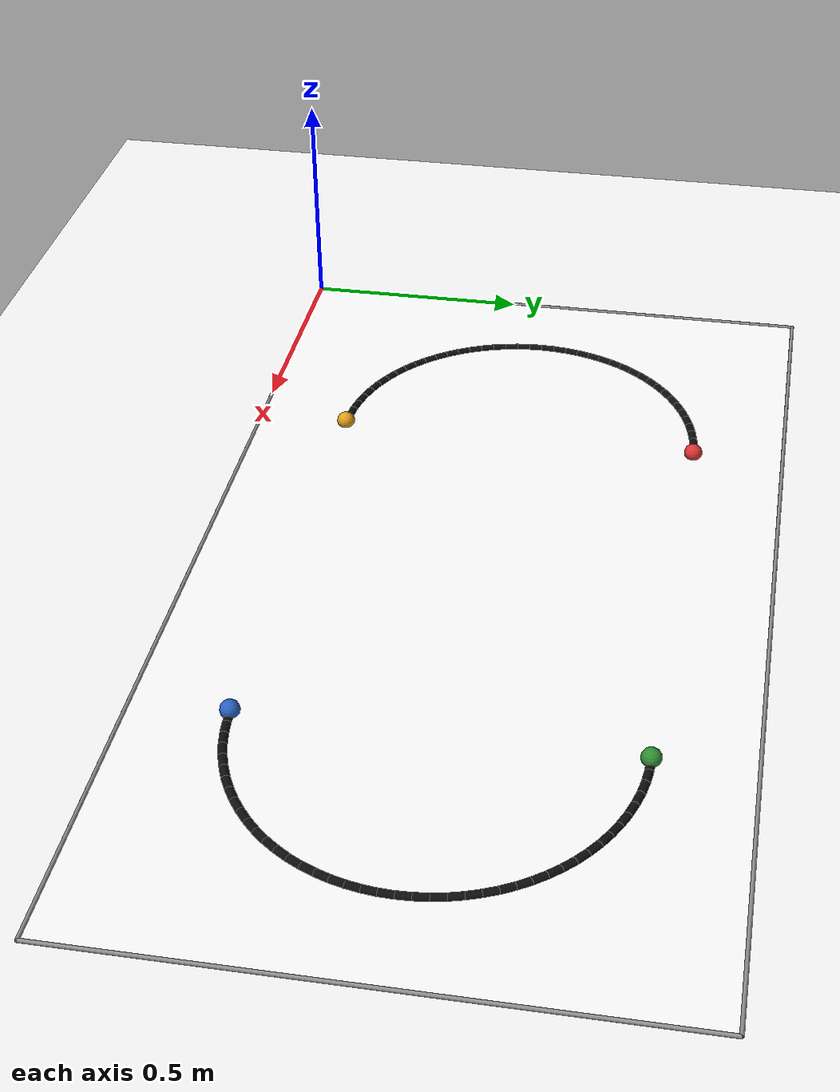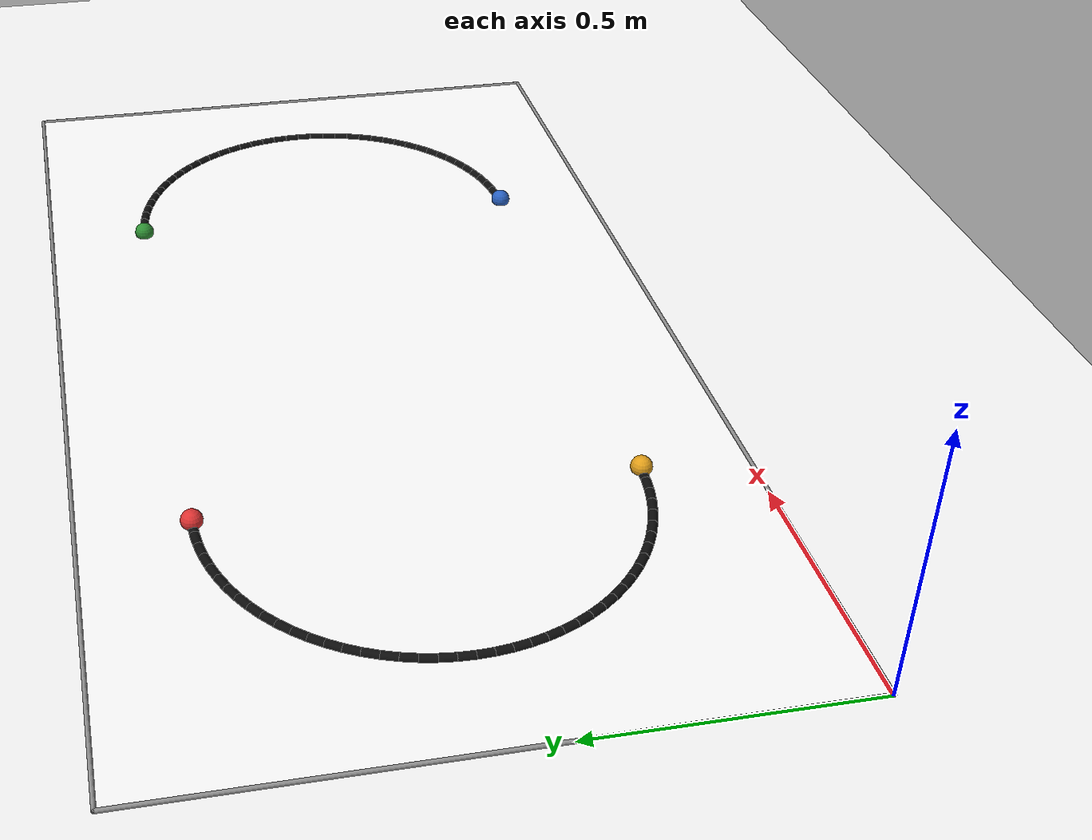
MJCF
<mujoco>
  <worldbody>
    <geom name="ground" type="plane" pos="1.100 0.600 0" size="3 3 0.1" rgba="0.980 0.980 0.980 1.000"/>
        <geom name="field" type="box" pos="1.100 0.600 0.001" size="1.100 0.600 0.001" rgba="1.000 1.000 1.000 1.000" contype="0" conaffinity="0"/>
        <geom name="boundary_top" type="capsule" fromto="0.000 0.000 0.002 2.200 0.000 0.002" size="0.004" rgba="0.550 0.550 0.550 1.000" contype="0" conaffinity="0"/>
        <geom name="boundary_bottom" type="capsule" fromto="0.000 1.200 0.002 2.200 1.200 0.002" size="0.004" rgba="0.550 0.550 0.550 1.000" contype="0" conaffinity="0"/>
        <geom name="boundary_left" type="capsule" fromto="0.000 0.000 0.002 0.000 1.200 0.002" size="0.004" rgba="0.550 0.550 0.550 1.000" contype="0" conaffinity="0"/>
        <geom name="boundary_right" type="capsule" fromto="2.200 0.000 0.002 2.200 1.200 0.002" size="0.004" rgba="0.550 0.550 0.550 1.000" contype="0" conaffinity="0"/>
        <geom name="left_arc_0" type="capsule" fromto="0.6000 1.0000 0.0010 0.5701 0.9989 0.0010" size="0.0090" rgba="0.050 0.050 0.050 1.000" contype="0" conaffinity="0"/>
    <geom name="left_arc_1" type="capsule" fromto="0.5701 0.9989 0.0010 0.5404 0.9955 0.0010" size="0.0090" rgba="0.050 0.050 0.050 1.000" contype="0" conaffinity="0"/>
    <geom name="left_arc_2" type="capsule" fromto="0.5404 0.9955 0.0010 0.5110 0.9900 0.0010" size="0.0090" rgba="0.050 0.050 0.050 1.000" contype="0" conaffinity="0"/>
    <geom name="left_arc_3" type="capsule" fromto="0.5110 0.9900 0.0010 0.4821 0.9822 0.0010" size="0.0090" rgba="0.050 0.050 0.050 1.000" contype="0" conaffinity="0"/>
    <geom name="left_arc_4" type="capsule" fromto="0.4821 0.9822 0.0010 0.4539 0.9723 0.0010" size="0.0090" rgba="0.050 0.050 0.050 1.000" contype="0" conaffinity="0"/>
    <geom name="left_arc_5" type="capsule" fromto="0.4539 0.9723 0.0010 0.4264 0.9604 0.0010" size="0.0090" rgba="0.050 0.050 0.050 1.000" contype="0" conaffinity="0"/>
    <geom name="left_arc_6" type="capsule" fromto="0.4264 0.9604 0.0010 0.4000 0.9464 0.0010" size="0.0090" rgba="0.050 0.050 0.050 1.000" contype="0" conaffinity="0"/>
    <geom name="left_arc_7" type="capsule" fromto="0.4000 0.9464 0.0010 0.3747 0.9305 0.0010" size="0.0090" rgba="0.050 0.050 0.050 1.000" contype="0" conaffinity="0"/>
    <geom name="left_arc_8" type="capsule" fromto="0.3747 0.9305 0.0010 0.3506 0.9127 0.0010" size="0.0090" rgba="0.050 0.050 0.050 1.000" contype="0" conaffinity="0"/>
    <geom name="left_arc_9" type="capsule" fromto="0.3506 0.9127 0.0010 0.3279 0.8932 0.0010" size="0.0090" rgba="0.050 0.050 0.050 1.000" contype="0" conaffinity="0"/>
    <geom name="left_arc_10" type="capsule" fromto="0.3279 0.8932 0.0010 0.3068 0.8721 0.0010" size="0.0090" rgba="0.050 0.050 0.050 1.000" contype="0" conaffinity="0"/>
    <geom name="left_arc_11" type="capsule" fromto="0.3068 0.8721 0.0010 0.2873 0.8494 0.0010" size="0.0090" rgba="0.050 0.050 0.050 1.000" contype="0" conaffinity="0"/>
    <geom name="left_arc_12" type="capsule" fromto="0.2873 0.8494 0.0010 0.2695 0.8253 0.0010" size="0.0090" rgba="0.050 0.050 0.050 1.000" contype="0" conaffinity="0"/>
    <geom name="left_arc_13" type="capsule" fromto="0.2695 0.8253 0.0010 0.2536 0.8000 0.0010" size="0.0090" rgba="0.050 0.050 0.050 1.000" contype="0" conaffinity="0"/>
    <geom name="left_arc_14" type="capsule" fromto="0.2536 0.8000 0.0010 0.2396 0.7736 0.0010" size="0.0090" rgba="0.050 0.050 0.050 1.000" contype="0" conaffinity="0"/>
    <geom name="left_arc_15" type="capsule" fromto="0.2396 0.7736 0.0010 0.2277 0.7461 0.0010" size="0.0090" rgba="0.050 0.050 0.050 1.000" contype="0" conaffinity="0"/>
    <geom name="left_arc_16" type="capsule" fromto="0.2277 0.7461 0.0010 0.2178 0.7179 0.0010" size="0.0090" rgba="0.050 0.050 0.050 1.000" contype="0" conaffinity="0"/>
    <geom name="left_arc_17" type="capsule" fromto="0.2178 0.7179 0.0010 0.2100 0.6890 0.0010" size="0.0090" rgba="0.050 0.050 0.050 1.000" contype="0" conaffinity="0"/>
    <geom name="left_arc_18" type="capsule" fromto="0.2100 0.6890 0.0010 0.2045 0.6596 0.0010" size="0.0090" rgba="0.050 0.050 0.050 1.000" contype="0" conaffinity="0"/>
    <geom name="left_arc_19" type="capsule" fromto="0.2045 0.6596 0.0010 0.2011 0.6299 0.0010" size="0.0090" rgba="0.050 0.050 0.050 1.000" contype="0" conaffinity="0"/>
    <geom name="left_arc_20" type="capsule" fromto="0.2011 0.6299 0.0010 0.2000 0.6000 0.0010" size="0.0090" rgba="0.050 0.050 0.050 1.000" contype="0" conaffinity="0"/>
    <geom name="left_arc_21" type="capsule" fromto="0.2000 0.6000 0.0010 0.2011 0.5701 0.0010" size="0.0090" rgba="0.050 0.050 0.050 1.000" contype="0" conaffinity="0"/>
    <geom name="left_arc_22" type="capsule" fromto="0.2011 0.5701 0.0010 0.2045 0.5404 0.0010" size="0.0090" rgba="0.050 0.050 0.050 1.000" contype="0" conaffinity="0"/>
    <geom name="left_arc_23" type="capsule" fromto="0.2045 0.5404 0.0010 0.2100 0.5110 0.0010" size="0.0090" rgba="0.050 0.050 0.050 1.000" contype="0" conaffinity="0"/>
    <geom name="left_arc_24" type="capsule" fromto="0.2100 0.5110 0.0010 0.2178 0.4821 0.0010" size="0.0090" rgba="0.050 0.050 0.050 1.000" contype="0" conaffinity="0"/>
    <geom name="left_arc_25" type="capsule" fromto="0.2178 0.4821 0.0010 0.2277 0.4539 0.0010" size="0.0090" rgba="0.050 0.050 0.050 1.000" contype="0" conaffinity="0"/>
    <geom name="left_arc_26" type="capsule" fromto="0.2277 0.4539 0.0010 0.2396 0.4264 0.0010" size="0.0090" rgba="0.050 0.050 0.050 1.000" contype="0" conaffinity="0"/>
    <geom name="left_arc_27" type="capsule" fromto="0.2396 0.4264 0.0010 0.2536 0.4000 0.0010" size="0.0090" rgba="0.050 0.050 0.050 1.000" contype="0" conaffinity="0"/>
    <geom name="left_arc_28" type="capsule" fromto="0.2536 0.4000 0.0010 0.2695 0.3747 0.0010" size="0.0090" rgba="0.050 0.050 0.050 1.000" contype="0" conaffinity="0"/>
    <geom name="left_arc_29" type="capsule" fromto="0.2695 0.3747 0.0010 0.2873 0.3506 0.0010" size="0.0090" rgba="0.050 0.050 0.050 1.000" contype="0" conaffinity="0"/>
    <geom name="left_arc_30" type="capsule" fromto="0.2873 0.3506 0.0010 0.3068 0.3279 0.0010" size="0.0090" rgba="0.050 0.050 0.050 1.000" contype="0" conaffinity="0"/>
    <geom name="left_arc_31" type="capsule" fromto="0.3068 0.3279 0.0010 0.3279 0.3068 0.0010" size="0.0090" rgba="0.050 0.050 0.050 1.000" contype="0" conaffinity="0"/>
    <geom name="left_arc_32" type="capsule" fromto="0.3279 0.3068 0.0010 0.3506 0.2873 0.0010" size="0.0090" rgba="0.050 0.050 0.050 1.000" contype="0" conaffinity="0"/>
    <geom name="left_arc_33" type="capsule" fromto="0.3506 0.2873 0.0010 0.3747 0.2695 0.0010" size="0.0090" rgba="0.050 0.050 0.050 1.000" contype="0" conaffinity="0"/>
    <geom name="left_arc_34" type="capsule" fromto="0.3747 0.2695 0.0010 0.4000 0.2536 0.0010" size="0.0090" rgba="0.050 0.050 0.050 1.000" contype="0" conaffinity="0"/>
    <geom name="left_arc_35" type="capsule" fromto="0.4000 0.2536 0.0010 0.4264 0.2396 0.0010" size="0.0090" rgba="0.050 0.050 0.050 1.000" contype="0" conaffinity="0"/>
    <geom name="left_arc_36" type="capsule" fromto="0.4264 0.2396 0.0010 0.4539 0.2277 0.0010" size="0.0090" rgba="0.050 0.050 0.050 1.000" contype="0" conaffinity="0"/>
    <geom name="left_arc_37" type="capsule" fromto="0.4539 0.2277 0.0010 0.4821 0.2178 0.0010" size="0.0090" rgba="0.050 0.050 0.050 1.000" contype="0" conaffinity="0"/>
    <geom name="left_arc_38" type="capsule" fromto="0.4821 0.2178 0.0010 0.5110 0.2100 0.0010" size="0.0090" rgba="0.050 0.050 0.050 1.000" contype="0" conaffinity="0"/>
    <geom name="left_arc_39" type="capsule" fromto="0.5110 0.2100 0.0010 0.5404 0.2045 0.0010" size="0.0090" rgba="0.050 0.050 0.050 1.000" contype="0" conaffinity="0"/>
    <geom name="left_arc_40" type="capsule" fromto="0.5404 0.2045 0.0010 0.5701 0.2011 0.0010" size="0.0090" rgba="0.050 0.050 0.050 1.000" contype="0" conaffinity="0"/>
    <geom name="left_arc_41" type="capsule" fromto="0.5701 0.2011 0.0010 0.6000 0.2000 0.0010" size="0.0090" rgba="0.050 0.050 0.050 1.000" contype="0" conaffinity="0"/>
        <geom name="right_arc_0" type="capsule" fromto="1.6000 1.0000 0.0010 1.6299 0.9989 0.0010" size="0.0090" rgba="0.050 0.050 0.050 1.000" contype="0" conaffinity="0"/>
    <geom name="right_arc_1" type="capsule" fromto="1.6299 0.9989 0.0010 1.6596 0.9955 0.0010" size="0.0090" rgba="0.050 0.050 0.050 1.000" contype="0" conaffinity="0"/>
    <geom name="right_arc_2" type="capsule" fromto="1.6596 0.9955 0.0010 1.6890 0.9900 0.0010" size="0.0090" rgba="0.050 0.050 0.050 1.000" contype="0" conaffinity="0"/>
    <geom name="right_arc_3" type="capsule" fromto="1.6890 0.9900 0.0010 1.7179 0.9822 0.0010" size="0.0090" rgba="0.050 0.050 0.050 1.000" contype="0" conaffinity="0"/>
    <geom name="right_arc_4" type="capsule" fromto="1.7179 0.9822 0.0010 1.7461 0.9723 0.0010" size="0.0090" rgba="0.050 0.050 0.050 1.000" contype="0" conaffinity="0"/>
    <geom name="right_arc_5" type="capsule" fromto="1.7461 0.9723 0.0010 1.7736 0.9604 0.0010" size="0.0090" rgba="0.050 0.050 0.050 1.000" contype="0" conaffinity="0"/>
    <geom name="right_arc_6" type="capsule" fromto="1.7736 0.9604 0.0010 1.8000 0.9464 0.0010" size="0.0090" rgba="0.050 0.050 0.050 1.000" contype="0" conaffinity="0"/>
    <geom name="right_arc_7" type="capsule" fromto="1.8000 0.9464 0.0010 1.8253 0.9305 0.0010" size="0.0090" rgba="0.050 0.050 0.050 1.000" contype="0" conaffinity="0"/>
    <geom name="right_arc_8" type="capsule" fromto="1.8253 0.9305 0.0010 1.8494 0.9127 0.0010" size="0.0090" rgba="0.050 0.050 0.050 1.000" contype="0" conaffinity="0"/>
    <geom name="right_arc_9" type="capsule" fromto="1.8494 0.9127 0.0010 1.8721 0.8932 0.0010" size="0.0090" rgba="0.050 0.050 0.050 1.000" contype="0" conaffinity="0"/>
    <geom name="right_arc_10" type="capsule" fromto="1.8721 0.8932 0.0010 1.8932 0.8721 0.0010" size="0.0090" rgba="0.050 0.050 0.050 1.000" contype="0" conaffinity="0"/>
    <geom name="right_arc_11" type="capsule" fromto="1.8932 0.8721 0.0010 1.9127 0.8494 0.0010" size="0.0090" rgba="0.050 0.050 0.050 1.000" contype="0" conaffinity="0"/>
    <geom name="right_arc_12" type="capsule" fromto="1.9127 0.8494 0.0010 1.9305 0.8253 0.0010" size="0.0090" rgba="0.050 0.050 0.050 1.000" contype="0" conaffinity="0"/>
    <geom name="right_arc_13" type="capsule" fromto="1.9305 0.8253 0.0010 1.9464 0.8000 0.0010" size="0.0090" rgba="0.050 0.050 0.050 1.000" contype="0" conaffinity="0"/>
    <geom name="right_arc_14" type="capsule" fromto="1.9464 0.8000 0.0010 1.9604 0.7736 0.0010" size="0.0090" rgba="0.050 0.050 0.050 1.000" contype="0" conaffinity="0"/>
    <geom name="right_arc_15" type="capsule" fromto="1.9604 0.7736 0.0010 1.9723 0.7461 0.0010" size="0.0090" rgba="0.050 0.050 0.050 1.000" contype="0" conaffinity="0"/>
    <geom name="right_arc_16" type="capsule" fromto="1.9723 0.7461 0.0010 1.9822 0.7179 0.0010" size="0.0090" rgba="0.050 0.050 0.050 1.000" contype="0" conaffinity="0"/>
    <geom name="right_arc_17" type="capsule" fromto="1.9822 0.7179 0.0010 1.9900 0.6890 0.0010" size="0.0090" rgba="0.050 0.050 0.050 1.000" contype="0" conaffinity="0"/>
    <geom name="right_arc_18" type="capsule" fromto="1.9900 0.6890 0.0010 1.9955 0.6596 0.0010" size="0.0090" rgba="0.050 0.050 0.050 1.000" contype="0" conaffinity="0"/>
    <geom name="right_arc_19" type="capsule" fromto="1.9955 0.6596 0.0010 1.9989 0.6299 0.0010" size="0.0090" rgba="0.050 0.050 0.050 1.000" contype="0" conaffinity="0"/>
    <geom name="right_arc_20" type="capsule" fromto="1.9989 0.6299 0.0010 2.0000 0.6000 0.0010" size="0.0090" rgba="0.050 0.050 0.050 1.000" contype="0" conaffinity="0"/>
    <geom name="right_arc_21" type="capsule" fromto="2.0000 0.6000 0.0010 1.9989 0.5701 0.0010" size="0.0090" rgba="0.050 0.050 0.050 1.000" contype="0" conaffinity="0"/>
    <geom name="right_arc_22" type="capsule" fromto="1.9989 0.5701 0.0010 1.9955 0.5404 0.0010" size="0.0090" rgba="0.050 0.050 0.050 1.000" contype="0" conaffinity="0"/>
    <geom name="right_arc_23" type="capsule" fromto="1.9955 0.5404 0.0010 1.9900 0.5110 0.0010" size="0.0090" rgba="0.050 0.050 0.050 1.000" contype="0" conaffinity="0"/>
    <geom name="right_arc_24" type="capsule" fromto="1.9900 0.5110 0.0010 1.9822 0.4821 0.0010" size="0.0090" rgba="0.050 0.050 0.050 1.000" contype="0" conaffinity="0"/>
    <geom name="right_arc_25" type="capsule" fromto="1.9822 0.4821 0.0010 1.9723 0.4539 0.0010" size="0.0090" rgba="0.050 0.050 0.050 1.000" contype="0" conaffinity="0"/>
    <geom name="right_arc_26" type="capsule" fromto="1.9723 0.4539 0.0010 1.9604 0.4264 0.0010" size="0.0090" rgba="0.050 0.050 0.050 1.000" contype="0" conaffinity="0"/>
    <geom name="right_arc_27" type="capsule" fromto="1.9604 0.4264 0.0010 1.9464 0.4000 0.0010" size="0.0090" rgba="0.050 0.050 0.050 1.000" contype="0" conaffinity="0"/>
    <geom name="right_arc_28" type="capsule" fromto="1.9464 0.4000 0.0010 1.9305 0.3747 0.0010" size="0.0090" rgba="0.050 0.050 0.050 1.000" contype="0" conaffinity="0"/>
    <geom name="right_arc_29" type="capsule" fromto="1.9305 0.3747 0.0010 1.9127 0.3506 0.0010" size="0.0090" rgba="0.050 0.050 0.050 1.000" contype="0" conaffinity="0"/>
    <geom name="right_arc_30" type="capsule" fromto="1.9127 0.3506 0.0010 1.8932 0.3279 0.0010" size="0.0090" rgba="0.050 0.050 0.050 1.000" contype="0" conaffinity="0"/>
    <geom name="right_arc_31" type="capsule" fromto="1.8932 0.3279 0.0010 1.8721 0.3068 0.0010" size="0.0090" rgba="0.050 0.050 0.050 1.000" contype="0" conaffinity="0"/>
    <geom name="right_arc_32" type="capsule" fromto="1.8721 0.3068 0.0010 1.8494 0.2873 0.0010" size="0.0090" rgba="0.050 0.050 0.050 1.000" contype="0" conaffinity="0"/>
    <geom name="right_arc_33" type="capsule" fromto="1.8494 0.2873 0.0010 1.8253 0.2695 0.0010" size="0.0090" rgba="0.050 0.050 0.050 1.000" contype="0" conaffinity="0"/>
    <geom name="right_arc_34" type="capsule" fromto="1.8253 0.2695 0.0010 1.8000 0.2536 0.0010" size="0.0090" rgba="0.050 0.050 0.050 1.000" contype="0" conaffinity="0"/>
    <geom name="right_arc_35" type="capsule" fromto="1.8000 0.2536 0.0010 1.7736 0.2396 0.0010" size="0.0090" rgba="0.050 0.050 0.050 1.000" contype="0" conaffinity="0"/>
    <geom name="right_arc_36" type="capsule" fromto="1.7736 0.2396 0.0010 1.7461 0.2277 0.0010" size="0.0090" rgba="0.050 0.050 0.050 1.000" contype="0" conaffinity="0"/>
    <geom name="right_arc_37" type="capsule" fromto="1.7461 0.2277 0.0010 1.7179 0.2178 0.0010" size="0.0090" rgba="0.050 0.050 0.050 1.000" contype="0" conaffinity="0"/>
    <geom name="right_arc_38" type="capsule" fromto="1.7179 0.2178 0.0010 1.6890 0.2100 0.0010" size="0.0090" rgba="0.050 0.050 0.050 1.000" contype="0" conaffinity="0"/>
    <geom name="right_arc_39" type="capsule" fromto="1.6890 0.2100 0.0010 1.6596 0.2045 0.0010" size="0.0090" rgba="0.050 0.050 0.050 1.000" contype="0" conaffinity="0"/>
    <geom name="right_arc_40" type="capsule" fromto="1.6596 0.2045 0.0010 1.6299 0.2011 0.0010" size="0.0090" rgba="0.050 0.050 0.050 1.000" contype="0" conaffinity="0"/>
    <geom name="right_arc_41" type="capsule" fromto="1.6299 0.2011 0.0010 1.6000 0.2000 0.0010" size="0.0090" rgba="0.050 0.050 0.050 1.000" contype="0" conaffinity="0"/>
        <site name="anchor_A" pos="0.6000 1.0000 0.0100" size="0.0200" type="sphere" rgba="0.870 0.200 0.200 1.000"/>
    <site name="anchor_B" pos="1.6000 1.0000 0.0100" size="0.0200" type="sphere" rgba="0.180 0.560 0.200 1.000"/>
    <site name="anchor_C" pos="1.6000 0.2000 0.0100" size="0.0200" type="sphere" rgba="0.160 0.380 0.760 1.000"/>
    <site name="anchor_D" pos="0.6000 0.2000 0.0100" size="0.0200" type="sphere" rgba="0.880 0.620 0.100 1.000"/>
  </worldbody>
</mujoco>
